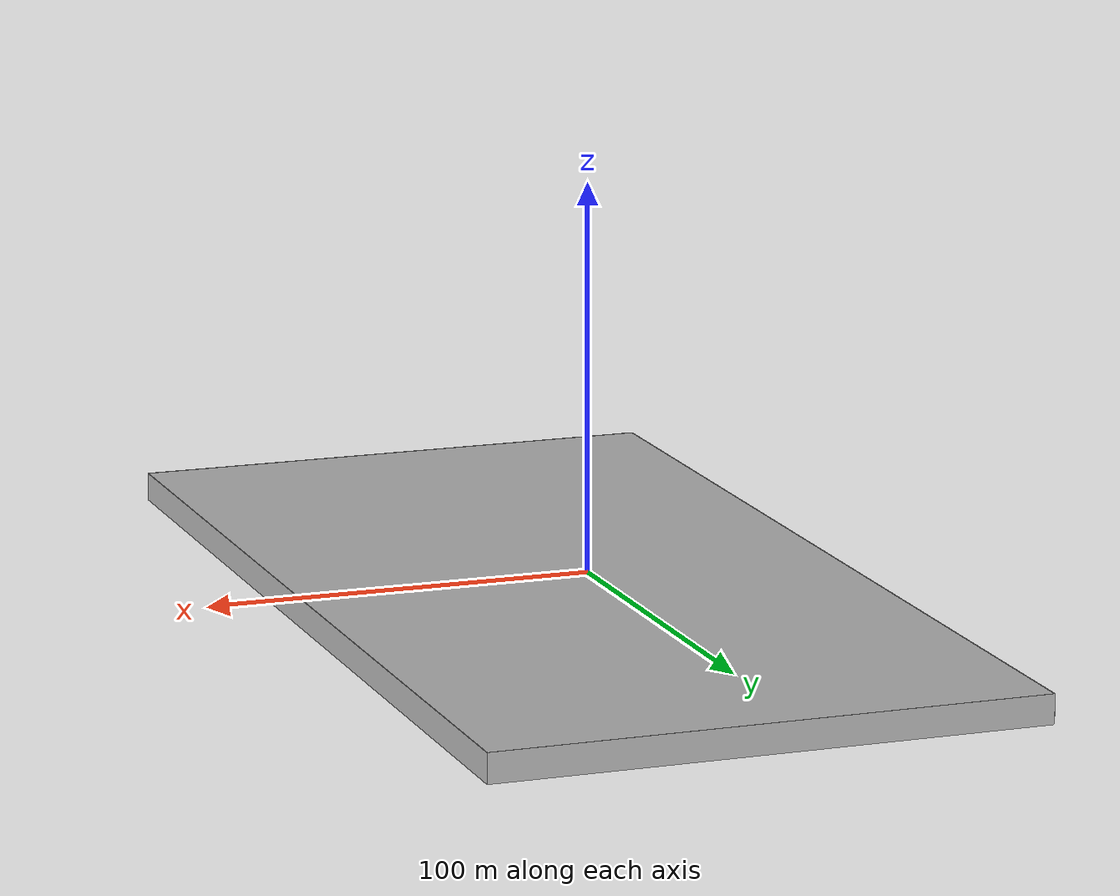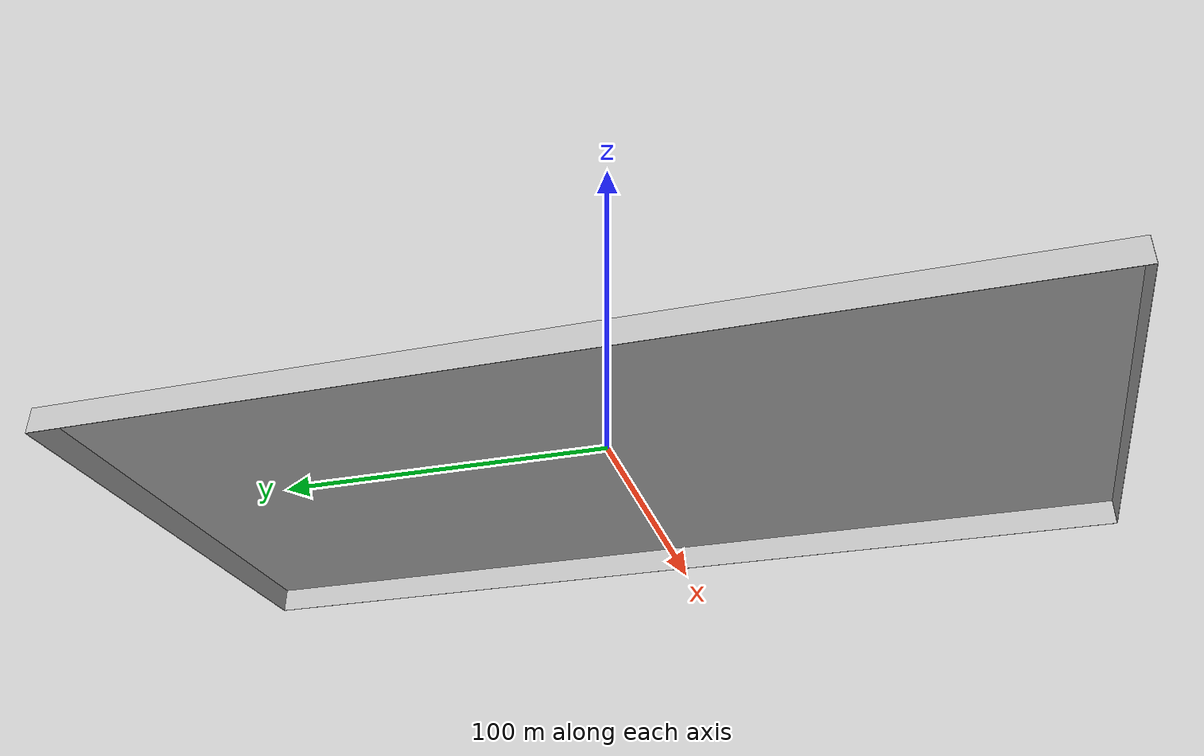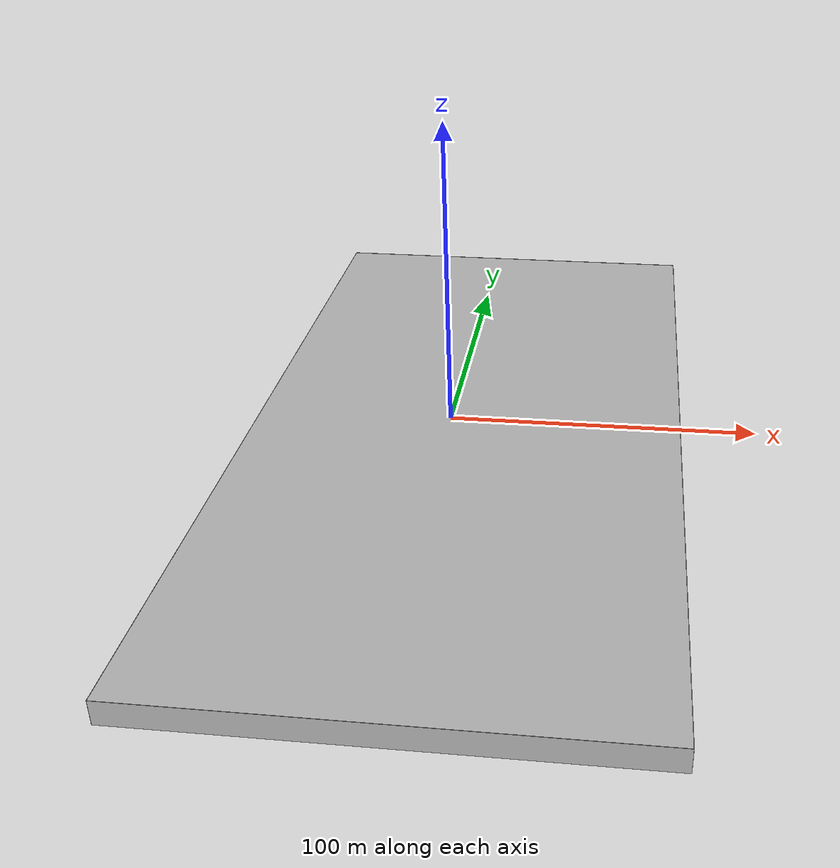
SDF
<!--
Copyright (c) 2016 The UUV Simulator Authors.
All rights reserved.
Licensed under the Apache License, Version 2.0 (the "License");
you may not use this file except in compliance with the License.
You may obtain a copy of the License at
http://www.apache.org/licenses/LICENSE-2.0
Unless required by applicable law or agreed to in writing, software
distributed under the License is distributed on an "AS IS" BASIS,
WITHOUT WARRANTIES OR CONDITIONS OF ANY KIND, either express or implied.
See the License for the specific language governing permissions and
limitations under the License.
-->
<?xml version="1.0" ?>
<sdf version="1.5">
  <model name="yacht_ocean">
    <static>true</static>
    <link name="link">
      <visual name="surface">
        <cast_shadows>false</cast_shadows>
        <pose>5.8 1 0 0 0 0</pose>
        <geometry>
          <box>
            <size>140 280 .001</size>
          </box>
        </geometry>
        <material>
          <script>
            <uri>model://yacht_ocean/materials/scripts</uri>
            <uri>model://yacht_ocean/materials/textures</uri>
            <name>UUV/Water</name>
          </script>
        </material>
      </visual>

      <visual name="north">
        <cast_shadows>false</cast_shadows>
        <pose>75.8 1 -3.7 0 0 0</pose>
        <geometry>
          <box>
            <size>.1 280 7.5</size>
          </box>
        </geometry>
        <material>
          <script>
            <uri>model://yacht_ocean/materials/scripts</uri>
            <uri>model://yacht_ocean/materials/textures</uri>
            <name>UUV/Water</name>
          </script>
        </material>
      </visual>

      <visual name="south">
        <cast_shadows>false</cast_shadows>
        <pose>-64.2 1 -3.7 0 0 0</pose>
        <geometry>
          <box>
            <size>.1 280 7.5</size>
          </box>
        </geometry>
        <material>
          <script>
            <uri>model://yacht_ocean/materials/scripts</uri>
            <uri>model://yacht_ocean/materials/textures</uri>
            <name>UUV/Water</name>
          </script>
        </material>
      </visual>

      <visual name="east">
        <cast_shadows>false</cast_shadows>
        <pose>5.8 -139 -3.7 0 0 0</pose>
        <geometry>
          <box>
            <size>140 .1 7.5</size>
          </box>
        </geometry>
        <material>
          <script>
            <uri>model://yacht_ocean/materials/scripts</uri>
            <uri>model://yacht_ocean/materials/textures</uri>
            <name>UUV/Water</name>
          </script>
        </material>
      </visual>

      <visual name="west">
        <cast_shadows>false</cast_shadows>
        <pose>5.8 141 -3.7 0 0 0</pose>
        <geometry>
          <box>
            <size>140 .1 7.5</size>
          </box>
        </geometry>
        <material>
          <script>
            <uri>model://yacht_ocean/materials/scripts</uri>
            <uri>model://yacht_ocean/materials/textures</uri>
            <name>UUV/Water</name>
          </script>
        </material>
      </visual>
    </link>
  </model>
</sdf>
